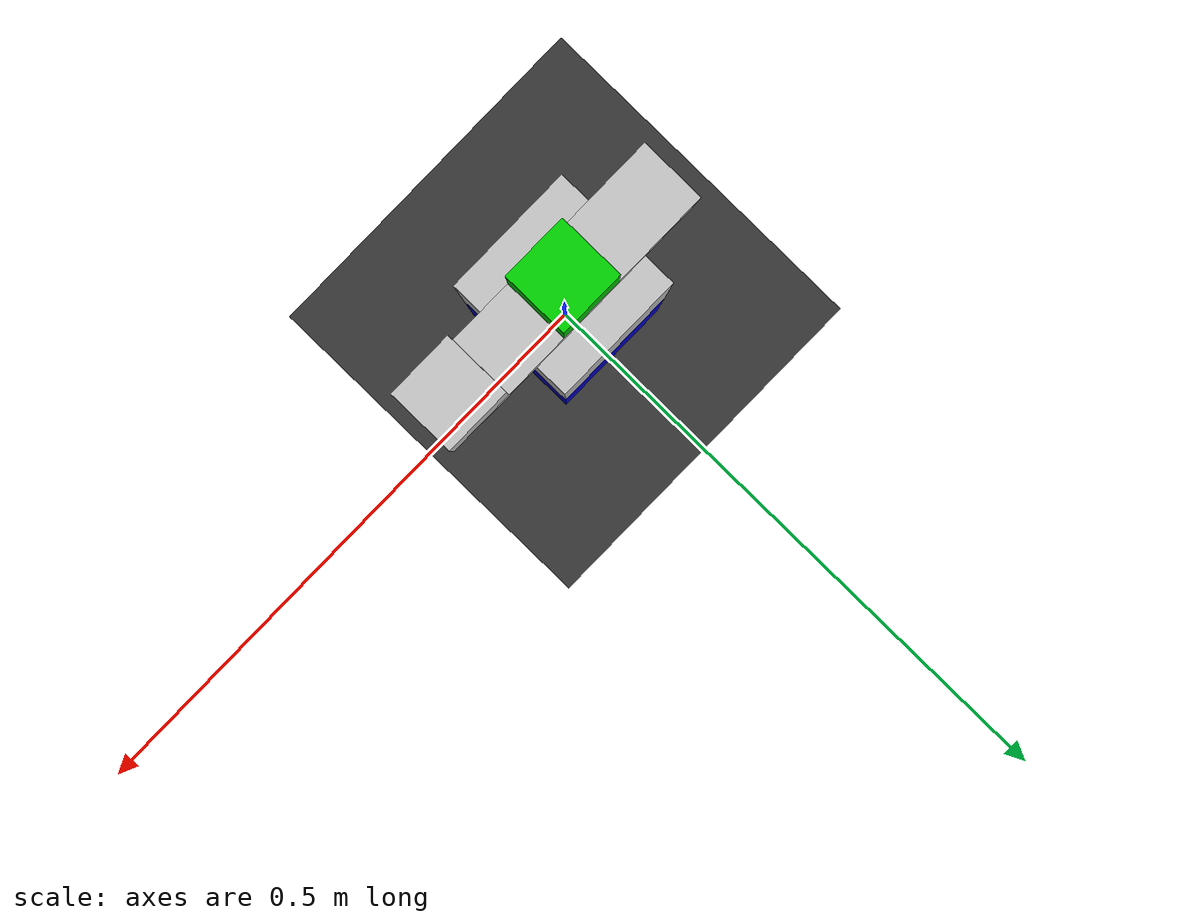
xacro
<?xml version="1.0"?>
<!-- Arm Model -->
<!--
Copied from ros2_control_demos
https://github.com/ros-controls/ros2_control_demos.git
-->
<robot xmlns:xacro="http://www.ros.org/wiki/xacro" name="arm_model">
  <xacro:arg name="prefix" default="" />

  <!-- Import arm_model macro -->
  <xacro:include filename="arm_model_description.urdf.xacro" />

  <!-- Import Rviz colors -->
  <xacro:include filename="arm_model.materials.xacro" />

  <!-- Import arm_model ros2_control description -->
<xacro:include filename="$(find arm_model)/description/ros2_control/arm_model.ros2_control.xacro" />
  <!-- Used for fixing robot -->
  <link name="world"/>

  <xacro:arm_model parent="world" prefix="$(arg prefix)">
    <origin xyz="0 0 0" rpy="0 0 0" />
  </xacro:arm_model>

  <xacro:arm_model_ros2_control
    name="arm_model" prefix="$(arg prefix)" />
</robot>

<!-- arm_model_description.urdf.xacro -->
<robot xmlns:xacro="http://www.ros.org/wiki/xacro">

  <xacro:macro name="arm_model" params="parent prefix *origin">

    <!-- *********************** PROPERTIES *********************** -->
    <xacro:property name="base_width" value="0.3"/>
    <xacro:property name="base_height" value="0.15"/>
    <xacro:property name="arm_width" value="0.1"/>
    <xacro:property name="arm_length" value="0.5"/>
    <xacro:property name="grip_width" value="0.05"/>
    <xacro:property name="grip_length" value="0.2"/>

    <!-- *********************** LINKS *********************** -->

    <!-- Base Link -->
    <link name="${prefix}base_link">
      <visual>
        <geometry>
          <box size="${base_width} ${base_width} ${base_height}"/>
        </geometry>
        <material name="grey"/>
      </visual>
      <collision>
        <geometry>
          <box size="${base_width} ${base_width} ${base_height}"/>
        </geometry>
      </collision>
      <inertial>
        <mass value="2.0"/>
        <inertia ixx="0.01875" ixy="0.0" ixz="0.0" iyy="0.01875" iyz="0.0" izz="0.03"/>
      </inertial>
    </link>

    <!-- Virtual Link for 2-DOF Joint -->
    <link name="${prefix}base_arm1_virtual_link">
      <inertial>
        <mass value="1e-5"/>
        <inertia ixx="0.001" ixy="0" ixz="0" iyy="0.001" iyz="0" izz="0.001"/>
      </inertial>
    </link>

    <!-- First Arm Link -->
    <link name="${prefix}arm1_link">
      <visual>
        <origin xyz="0 0 ${arm_length/2}"/>
        <geometry>
          <box size="${arm_width} ${arm_width} ${arm_length}"/>
        </geometry>
        <material name="blue"/>
      </visual>
      <collision>
        <origin xyz="0 0 ${arm_length/2}"/>
        <geometry>
          <box size="${arm_width} ${arm_width} ${arm_length}"/>
        </geometry>
      </collision>
      <inertial>
        <origin xyz="0 0 ${arm_length/2}"/>
        <mass value="1.0"/>
        <inertia ixx="0.0217" ixy="0.0" ixz="0.0" iyy="0.0217" iyz="0.0" izz="0.0017"/>
      </inertial>
    </link>

    <!-- Second Arm Link -->
    <link name="${prefix}arm2_link">
      <visual>
        <origin xyz="0 0 ${arm_length/2}"/>
        <geometry>
          <box size="${arm_width} ${arm_width} ${arm_length}"/>
        </geometry>
        <material name="silver"/>
      </visual>
      <collision>
        <origin xyz="0 0 ${arm_length/2}"/>
        <geometry>
          <box size="${arm_width} ${arm_width} ${arm_length}"/>
        </geometry>
      </collision>
      <inertial>
        <origin xyz="0 0 ${arm_length/2}"/>
        <mass value="1.0"/>
        <inertia ixx="0.0217" ixy="0.0" ixz="0.0" iyy="0.0217" iyz="0.0" izz="0.0017"/>
      </inertial>
    </link>

    <!-- Gripper Base -->
    <link name="${prefix}grip_base_link">
      <visual>
        <origin xyz="0 0 ${grip_width/2}"/>
        <geometry>
          <box size="${grip_length} ${grip_width} ${grip_width}"/>
        </geometry>
        <material name="silver"/>
      </visual>
      <collision>
        <origin xyz="0 0 ${grip_width/2}"/>
        <geometry>
          <box size="${grip_length} ${grip_width} ${grip_width}"/>
        </geometry>
      </collision>
      <inertial>
        <origin xyz="0 0 ${grip_width/2}"/>
        <mass value="1.0"/>
        <inertia ixx="0.0217" ixy="0.0" ixz="0.0" iyy="0.0217" iyz="0.0" izz="0.0017"/>
      </inertial>
    </link>

    <!-- Gripper 1 -->
    <link name="${prefix}grip1_link">
      <visual>
        <origin xyz="0 0 ${grip_length/2}"/>
        <geometry>
          <box size="${grip_width} ${grip_width} ${grip_length}"/>
        </geometry>
        <material name="silver"/>
      </visual>
      <collision>
        <origin xyz="0 0 ${grip_length/2}"/>
        <geometry>
          <box size="${grip_width} ${grip_width} ${grip_length}"/>
        </geometry>
      </collision>
      <inertial>
        <origin xyz="0 0 ${grip_length/2}"/>
        <mass value="1.0"/>
        <inertia ixx="0.0217" ixy="0.0" ixz="0.0" iyy="0.0217" iyz="0.0" izz="0.0017"/>
      </inertial>
    </link>

    <!-- Gripper 2 -->
    <link name="${prefix}grip2_link">
      <visual>
        <origin xyz="0 0 ${grip_length/2}"/>
        <geometry>
          <box size="${grip_width} ${grip_width} ${grip_length}"/>
        </geometry>
        <material name="green"/>
      </visual>
      <collision>
        <origin xyz="0 0 ${grip_length/2}"/>
        <geometry>
          <box size="${grip_width} ${grip_width} ${grip_length}"/>
        </geometry>
      </collision>
      <inertial>
        <origin xyz="0 0 ${grip_length/2}"/>
        <mass value="1.0"/>
        <inertia ixx="0.0217" ixy="0.0" ixz="0.0" iyy="0.0217" iyz="0.0" izz="0.0017"/>
      </inertial>
    </link>
    <!-- *********************** JOINTS *********************** -->

    <joint name="${prefix}base_joint" type="fixed">
      <xacro:insert_block name="origin" />
      <parent link="${parent}"/>
      <child link="${prefix}base_link" />
    </joint>

    <joint name="${prefix}joint1" type="continuous">
      <parent link="${prefix}base_link"/>
      <child link="${prefix}base_arm1_virtual_link"/>
      <axis xyz="0 0 1"/>
      <origin xyz="0 0 ${base_height/2}"/>
    </joint>

    <joint name="${prefix}joint2" type="continuous">
      <parent link="${prefix}base_arm1_virtual_link"/>
      <child link="${prefix}arm1_link"/>
      <axis xyz="0 1 0"/>
      <origin xyz="0 0 0"/>
    </joint>

    <joint name="${prefix}joint3" type="continuous">
      <parent link="${prefix}arm1_link"/>
      <child link="${prefix}arm2_link"/>
      <axis xyz="0 1 0"/>
      <origin xyz="0 0 ${arm_length}"/>
    </joint>

    <joint name="${prefix}base_grip_joint" type="fixed">
      <parent link="${prefix}arm2_link"/>
      <child link="${prefix}grip_base_link"/>
      <origin xyz="0 0 ${arm_length}"/>
    </joint>

    <joint name="${prefix}grip1_joint" type="fixed">
      <parent link="${prefix}grip_base_link"/>
      <child link="${prefix}grip1_link"/>
      <origin xyz="${grip_length/2} 0 ${grip_width}"/>
    </joint>

    <joint name="${prefix}grip2_joint" type="prismatic">
      <parent link="${prefix}grip_base_link"/>
      <child link="${prefix}grip2_link"/>
      <axis xyz="1 0 0"/>
      <limit lower="${-grip_length/2}" upper="${grip_length/2}" effort="10" velocity="0.1"/>
      <origin xyz="0 0 ${grip_width}"/>
    </joint>
  </xacro:macro>
</robot>

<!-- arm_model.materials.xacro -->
<!--
Copied from ros2_control_demos
https://github.com/ros-controls/ros2_control_demos.git
-->
<robot>

  <material name="black">
    <color rgba="0.0 0.0 0.0 1.0"/>
  </material>

  <material name="blue">
    <color rgba="0.0 0.0 0.8 1.0"/>
  </material>

  <material name="green">
    <color rgba="0.0 0.8 0.0 1.0"/>
  </material>

  <material name="grey">
    <color rgba="0.2 0.2 0.2 1.0"/>
  </material>

  <material name="silver">
    <color rgba="0.75 0.75 0.75 1.0"/>
  </material>

  <material name="orange">
    <color rgba="${255/255} ${108/255} ${10/255} 1.0"/>
  </material>

  <material name="brown">
    <color rgba="${222/255} ${207/255} ${195/255} 1.0"/>
  </material>

  <material name="red">
    <color rgba="0.8 0.0 0.0 1.0"/>
  </material>

  <material name="yellow">
    <color rgba="1.0 1.0 0.0 1.0"/>
  </material>

  <material name="white">
    <color rgba="1.0 1.0 1.0 1.0"/>
  </material>

</robot>
